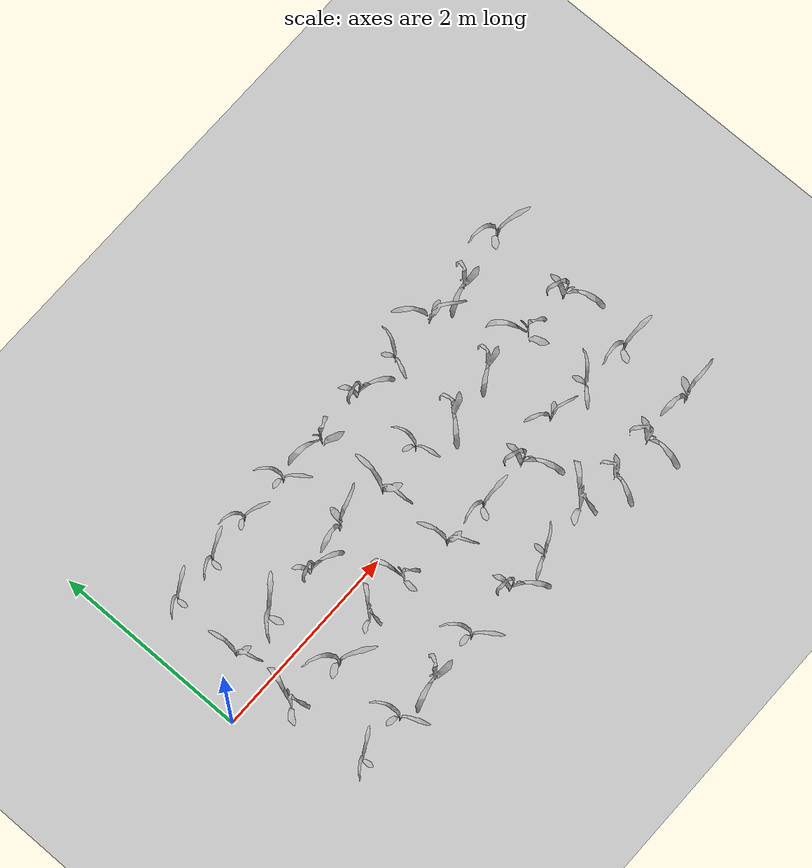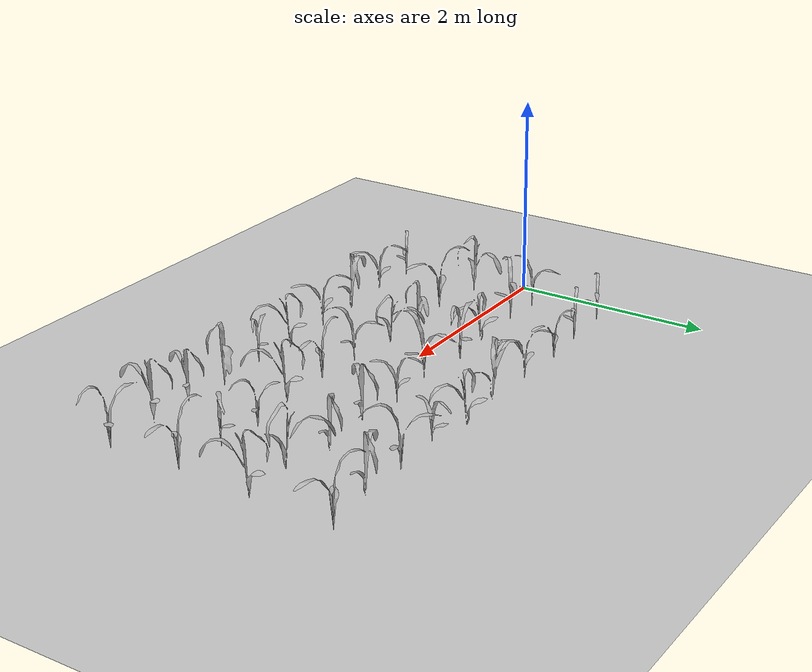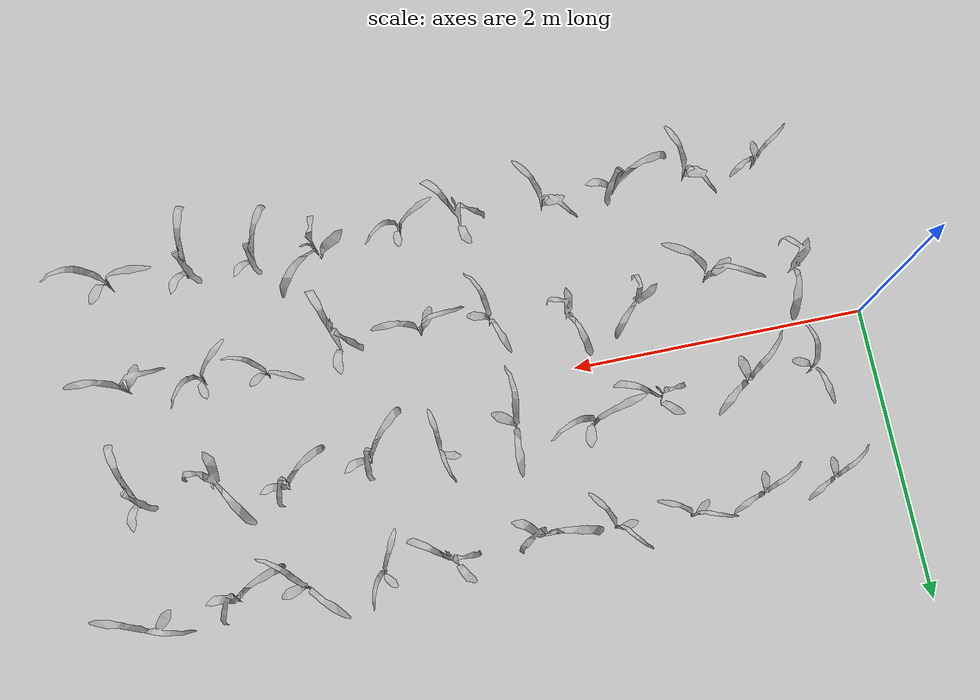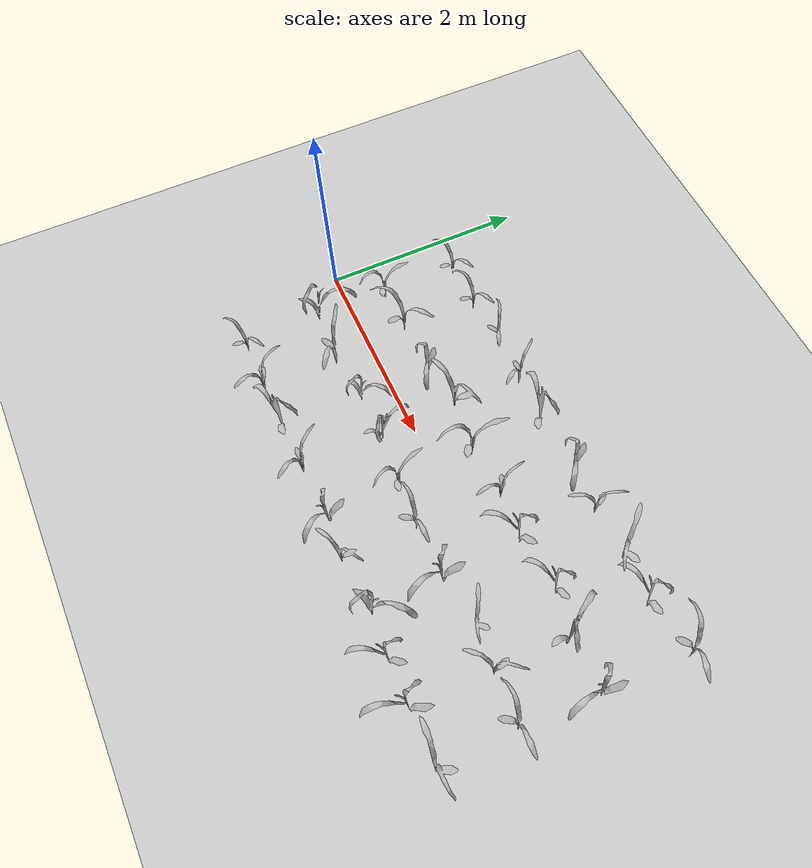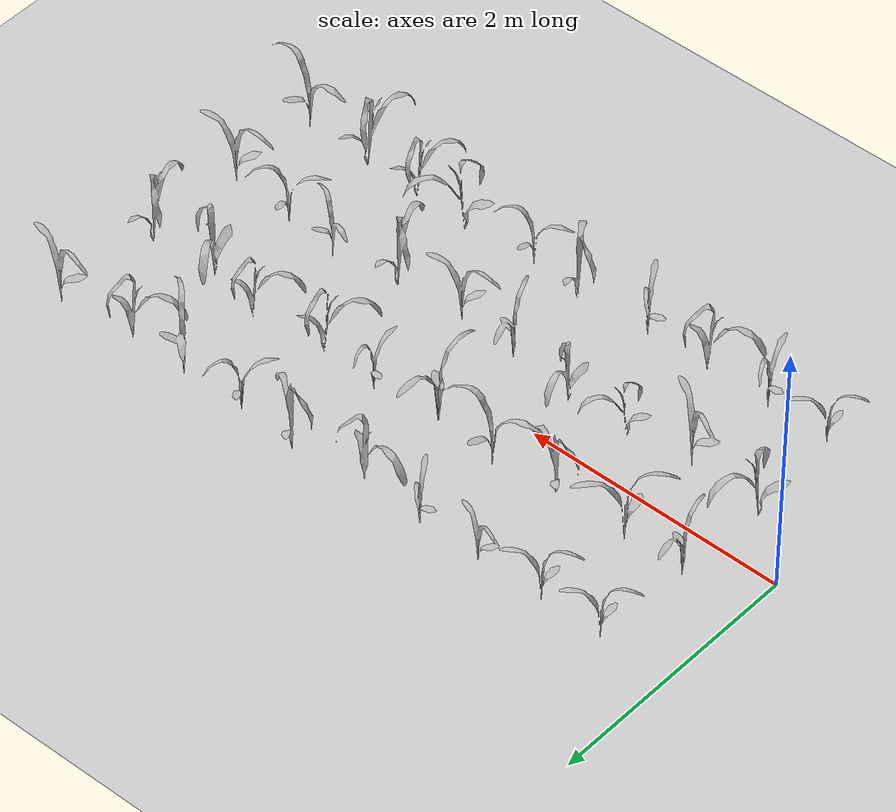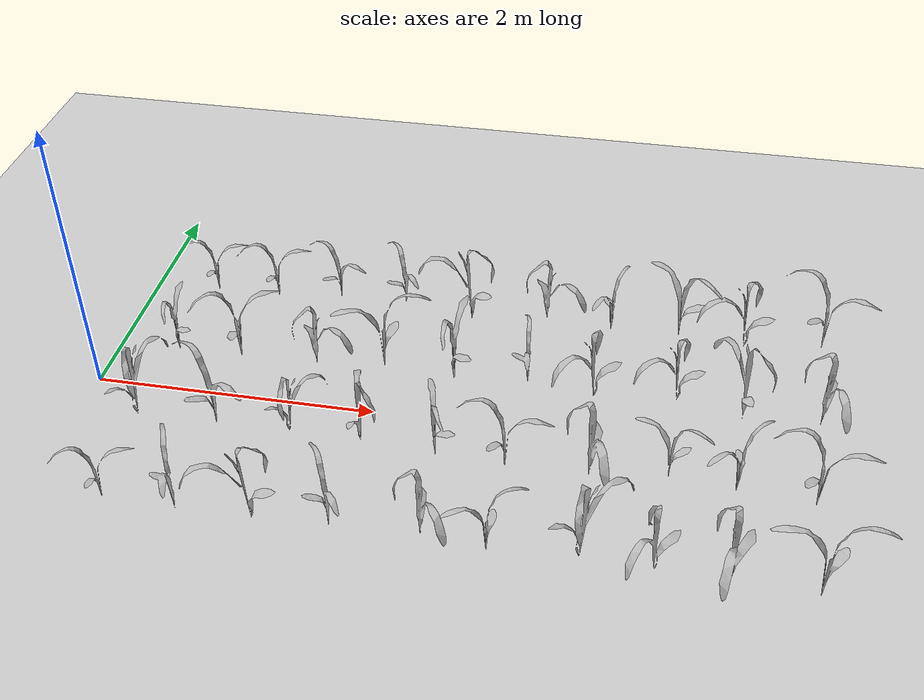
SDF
<sdf version="1.6">
 <world name="default">
  <model name="ground_plane">
   <static>1</static>
   <link name="link">
    <collision name="collision">
     <geometry><plane><normal>0 0 1</normal><size>100 100</size></plane></geometry>
     <surface>
      <contact><collide_bitmask>65535</collide_bitmask></contact>
      <friction><ode><mu>100</mu><mu2>50</mu2></ode></friction>
     </surface>
    </collision>
    <visual name="visual">
     <cast_shadows>0</cast_shadows>
     <geometry><plane><normal>0 0 1</normal><size>100 100</size></plane></geometry>
     <material>
      <script><uri>file://media/materials/scripts/gazebo.material</uri><name>Gazebo/Grey</name></script>
     </material>
    </visual>
   </link>
  </model>
  <model name="maize_02_0000">
   <pose>0.47049687635757786 0.36059624816049446 0.05 0 -0 3.884376960616973</pose>
   <link name="maize_02_0000_link">
    <inertial>
     <mass>5.0</mass>
     <inertia>
      <ixx>0.0033416667</ixx>
      <ixy>0</ixy>
      <ixz>0</ixz>
      <iyy>0.0033416667</iyy>
      <iyz>0</iyz>
      <izz>0.000016666667</izz>
     </inertia>
     <pose>0 0 0.1 0 0 0</pose>
    </inertial>
    <collision name="collision">
     <pose>0 0 0.2 0 -0 0</pose>
     <geometry><box><size>0.02 0.02 0.4</size></box></geometry>
     <surface><friction><ode><mu>10</mu><mu2>10</mu2></ode></friction></surface>
    </collision>
    <visual name="visual">
     <geometry>
      <mesh>
       <uri>model://maize_02/meshes/maize_02.dae</uri>
       <scale>0.5674274716346216 0.5674274716346216 0.5674274716346216</scale>
      </mesh>
     </geometry>
    </visual>
   </link>
  </model>
  <model name="maize_02_0001">
   <pose>0.508140931266495 1.104313894945125 0.05 0 -0 2.666948852061892</pose>
   <link name="maize_02_0001_link">
    <inertial>
     <mass>5.0</mass>
     <inertia>
      <ixx>0.0033416667</ixx>
      <ixy>0</ixy>
      <ixz>0</ixz>
      <iyy>0.0033416667</iyy>
      <iyz>0</iyz>
      <izz>0.000016666667</izz>
     </inertia>
     <pose>0 0 0.1 0 0 0</pose>
    </inertial>
    <collision name="collision">
     <pose>0 0 0.2 0 -0 0</pose>
     <geometry><box><size>0.02 0.02 0.4</size></box></geometry>
     <surface><friction><ode><mu>10</mu><mu2>10</mu2></ode></friction></surface>
    </collision>
    <visual name="visual">
     <geometry>
      <mesh>
       <uri>model://maize_02/meshes/maize_02.dae</uri>
       <scale>0.5115875292245987 0.5115875292245987 0.5115875292245987</scale>
      </mesh>
     </geometry>
    </visual>
   </link>
  </model>
  <model name="maize_01_0002">
   <pose>0.43486589940218173 -0.3454473768139016 0.05 0 -0 2.066160482995275</pose>
   <link name="maize_01_0002_link">
    <inertial>
     <mass>5.0</mass>
     <inertia>
      <ixx>0.0033416667</ixx>
      <ixy>0</ixy>
      <ixz>0</ixz>
      <iyy>0.0033416667</iyy>
      <iyz>0</iyz>
      <izz>0.000016666667</izz>
     </inertia>
     <pose>0 0 0.1 0 0 0</pose>
    </inertial>
    <collision name="collision">
     <pose>0 0 0.2 0 -0 0</pose>
     <geometry><box><size>0.02 0.02 0.4</size></box></geometry>
     <surface><friction><ode><mu>10</mu><mu2>10</mu2></ode></friction></surface>
    </collision>
    <visual name="visual">
     <geometry>
      <mesh>
       <uri>model://maize_01/meshes/maize_01.dae</uri>
       <scale>0.6489830155867166 0.6489830155867166 0.6489830155867166</scale>
      </mesh>
     </geometry>
    </visual>
   </link>
  </model>
  <model name="maize_02_0003">
   <pose>0.5099315625908049 -1.1301390917868228 0.05 0 -0 2.694714453417864</pose>
   <link name="maize_02_0003_link">
    <inertial>
     <mass>5.0</mass>
     <inertia>
      <ixx>0.0033416667</ixx>
      <ixy>0</ixy>
      <ixz>0</ixz>
      <iyy>0.0033416667</iyy>
      <iyz>0</iyz>
      <izz>0.000016666667</izz>
     </inertia>
     <pose>0 0 0.1 0 0 0</pose>
    </inertial>
    <collision name="collision">
     <pose>0 0 0.2 0 -0 0</pose>
     <geometry><box><size>0.02 0.02 0.4</size></box></geometry>
     <surface><friction><ode><mu>10</mu><mu2>10</mu2></ode></friction></surface>
    </collision>
    <visual name="visual">
     <geometry>
      <mesh>
       <uri>model://maize_02/meshes/maize_02.dae</uri>
       <scale>0.5016709728173756 0.5016709728173756 0.5016709728173756</scale>
      </mesh>
     </geometry>
    </visual>
   </link>
  </model>
  <model name="maize_02_0004">
   <pose>0.9311962609178649 0.3729072653908273 0.05 0 -0 2.855051085785902</pose>
   <link name="maize_02_0004_link">
    <inertial>
     <mass>5.0</mass>
     <inertia>
      <ixx>0.0033416667</ixx>
      <ixy>0</ixy>
      <ixz>0</ixz>
      <iyy>0.0033416667</iyy>
      <iyz>0</iyz>
      <izz>0.000016666667</izz>
     </inertia>
     <pose>0 0 0.1 0 0 0</pose>
    </inertial>
    <collision name="collision">
     <pose>0 0 0.2 0 -0 0</pose>
     <geometry><box><size>0.02 0.02 0.4</size></box></geometry>
     <surface><friction><ode><mu>10</mu><mu2>10</mu2></ode></friction></surface>
    </collision>
    <visual name="visual">
     <geometry>
      <mesh>
       <uri>model://maize_02/meshes/maize_02.dae</uri>
       <scale>0.662688299009895 0.662688299009895 0.662688299009895</scale>
      </mesh>
     </geometry>
    </visual>
   </link>
  </model>
  <model name="maize_02_0005">
   <pose>0.9833217093753088 1.109699803739185 0.05 0 -0 2.581048507436319</pose>
   <link name="maize_02_0005_link">
    <inertial>
     <mass>5.0</mass>
     <inertia>
      <ixx>0.0033416667</ixx>
      <ixy>0</ixy>
      <ixz>0</ixz>
      <iyy>0.0033416667</iyy>
      <iyz>0</iyz>
      <izz>0.000016666667</izz>
     </inertia>
     <pose>0 0 0.1 0 0 0</pose>
    </inertial>
    <collision name="collision">
     <pose>0 0 0.2 0 -0 0</pose>
     <geometry><box><size>0.02 0.02 0.4</size></box></geometry>
     <surface><friction><ode><mu>10</mu><mu2>10</mu2></ode></friction></surface>
    </collision>
    <visual name="visual">
     <geometry>
      <mesh>
       <uri>model://maize_02/meshes/maize_02.dae</uri>
       <scale>0.5312986790910379 0.5312986790910379 0.5312986790910379</scale>
      </mesh>
     </geometry>
    </visual>
   </link>
  </model>
  <model name="maize_02_0006">
   <pose>1.0187841868410517 -0.3981828536381571 0.05 0 -0 1.578195125479709</pose>
   <link name="maize_02_0006_link">
    <inertial>
     <mass>5.0</mass>
     <inertia>
      <ixx>0.0033416667</ixx>
      <ixy>0</ixy>
      <ixz>0</ixz>
      <iyy>0.0033416667</iyy>
      <iyz>0</iyz>
      <izz>0.000016666667</izz>
     </inertia>
     <pose>0 0 0.1 0 0 0</pose>
    </inertial>
    <collision name="collision">
     <pose>0 0 0.2 0 -0 0</pose>
     <geometry><box><size>0.02 0.02 0.4</size></box></geometry>
     <surface><friction><ode><mu>10</mu><mu2>10</mu2></ode></friction></surface>
    </collision>
    <visual name="visual">
     <geometry>
      <mesh>
       <uri>model://maize_02/meshes/maize_02.dae</uri>
       <scale>0.6868409701709819 0.6868409701709819 0.6868409701709819</scale>
      </mesh>
     </geometry>
    </visual>
   </link>
  </model>
  <model name="maize_02_0007">
   <pose>0.9982340490399799 -1.1398354682902523 0.05 0 -0 0.9474725027138337</pose>
   <link name="maize_02_0007_link">
    <inertial>
     <mass>5.0</mass>
     <inertia>
      <ixx>0.0033416667</ixx>
      <ixy>0</ixy>
      <ixz>0</ixz>
      <iyy>0.0033416667</iyy>
      <iyz>0</iyz>
      <izz>0.000016666667</izz>
     </inertia>
     <pose>0 0 0.1 0 0 0</pose>
    </inertial>
    <collision name="collision">
     <pose>0 0 0.2 0 -0 0</pose>
     <geometry><box><size>0.02 0.02 0.4</size></box></geometry>
     <surface><friction><ode><mu>10</mu><mu2>10</mu2></ode></friction></surface>
    </collision>
    <visual name="visual">
     <geometry>
      <mesh>
       <uri>model://maize_02/meshes/maize_02.dae</uri>
       <scale>0.5753369803053865 0.5753369803053865 0.5753369803053865</scale>
      </mesh>
     </geometry>
    </visual>
   </link>
  </model>
  <model name="maize_01_0008">
   <pose>1.4910292846520345 0.36998147962649564 0.05 0 -0 0.354033093321621</pose>
   <link name="maize_01_0008_link">
    <inertial>
     <mass>5.0</mass>
     <inertia>
      <ixx>0.0033416667</ixx>
      <ixy>0</ixy>
      <ixz>0</ixz>
      <iyy>0.0033416667</iyy>
      <iyz>0</iyz>
      <izz>0.000016666667</izz>
     </inertia>
     <pose>0 0 0.1 0 0 0</pose>
    </inertial>
    <collision name="collision">
     <pose>0 0 0.2 0 -0 0</pose>
     <geometry><box><size>0.02 0.02 0.4</size></box></geometry>
     <surface><friction><ode><mu>10</mu><mu2>10</mu2></ode></friction></surface>
    </collision>
    <visual name="visual">
     <geometry>
      <mesh>
       <uri>model://maize_01/meshes/maize_01.dae</uri>
       <scale>0.5600452258106574 0.5600452258106574 0.5600452258106574</scale>
      </mesh>
     </geometry>
    </visual>
   </link>
  </model>
  <model name="maize_02_0009">
   <pose>1.463804960982392 1.1517406796965655 0.05 0 -0 1.737335462703134</pose>
   <link name="maize_02_0009_link">
    <inertial>
     <mass>5.0</mass>
     <inertia>
      <ixx>0.0033416667</ixx>
      <ixy>0</ixy>
      <ixz>0</ixz>
      <iyy>0.0033416667</iyy>
      <iyz>0</iyz>
      <izz>0.000016666667</izz>
     </inertia>
     <pose>0 0 0.1 0 0 0</pose>
    </inertial>
    <collision name="collision">
     <pose>0 0 0.2 0 -0 0</pose>
     <geometry><box><size>0.02 0.02 0.4</size></box></geometry>
     <surface><friction><ode><mu>10</mu><mu2>10</mu2></ode></friction></surface>
    </collision>
    <visual name="visual">
     <geometry>
      <mesh>
       <uri>model://maize_02/meshes/maize_02.dae</uri>
       <scale>0.5069168064555951 0.5069168064555951 0.5069168064555951</scale>
      </mesh>
     </geometry>
    </visual>
   </link>
  </model>
  <model name="maize_01_0010">
   <pose>1.50807623899649 -0.33465844761086383 0.05 0 -0 1.6519221138219264</pose>
   <link name="maize_01_0010_link">
    <inertial>
     <mass>5.0</mass>
     <inertia>
      <ixx>0.0033416667</ixx>
      <ixy>0</ixy>
      <ixz>0</ixz>
      <iyy>0.0033416667</iyy>
      <iyz>0</iyz>
      <izz>0.000016666667</izz>
     </inertia>
     <pose>0 0 0.1 0 0 0</pose>
    </inertial>
    <collision name="collision">
     <pose>0 0 0.2 0 -0 0</pose>
     <geometry><box><size>0.02 0.02 0.4</size></box></geometry>
     <surface><friction><ode><mu>10</mu><mu2>10</mu2></ode></friction></surface>
    </collision>
    <visual name="visual">
     <geometry>
      <mesh>
       <uri>model://maize_01/meshes/maize_01.dae</uri>
       <scale>0.5238968436570051 0.5238968436570051 0.5238968436570051</scale>
      </mesh>
     </geometry>
    </visual>
   </link>
  </model>
  <model name="maize_01_0011">
   <pose>1.4978745621224943 -1.1325892652221476 0.05 0 -0 4.200214076907188</pose>
   <link name="maize_01_0011_link">
    <inertial>
     <mass>5.0</mass>
     <inertia>
      <ixx>0.0033416667</ixx>
      <ixy>0</ixy>
      <ixz>0</ixz>
      <iyy>0.0033416667</iyy>
      <iyz>0</iyz>
      <izz>0.000016666667</izz>
     </inertia>
     <pose>0 0 0.1 0 0 0</pose>
    </inertial>
    <collision name="collision">
     <pose>0 0 0.2 0 -0 0</pose>
     <geometry><box><size>0.02 0.02 0.4</size></box></geometry>
     <surface><friction><ode><mu>10</mu><mu2>10</mu2></ode></friction></surface>
    </collision>
    <visual name="visual">
     <geometry>
      <mesh>
       <uri>model://maize_01/meshes/maize_01.dae</uri>
       <scale>0.6493503078875315 0.6493503078875315 0.6493503078875315</scale>
      </mesh>
     </geometry>
    </visual>
   </link>
  </model>
  <model name="maize_02_0012">
   <pose>1.972013142105016 0.4362986354244308 0.05 0 -0 5.554065683698922</pose>
   <link name="maize_02_0012_link">
    <inertial>
     <mass>5.0</mass>
     <inertia>
      <ixx>0.0033416667</ixx>
      <ixy>0</ixy>
      <ixz>0</ixz>
      <iyy>0.0033416667</iyy>
      <iyz>0</iyz>
      <izz>0.000016666667</izz>
     </inertia>
     <pose>0 0 0.1 0 0 0</pose>
    </inertial>
    <collision name="collision">
     <pose>0 0 0.2 0 -0 0</pose>
     <geometry><box><size>0.02 0.02 0.4</size></box></geometry>
     <surface><friction><ode><mu>10</mu><mu2>10</mu2></ode></friction></surface>
    </collision>
    <visual name="visual">
     <geometry>
      <mesh>
       <uri>model://maize_02/meshes/maize_02.dae</uri>
       <scale>0.6814321854556409 0.6814321854556409 0.6814321854556409</scale>
      </mesh>
     </geometry>
    </visual>
   </link>
  </model>
  <model name="maize_02_0013">
   <pose>1.9722264010497819 1.1272146396033693 0.05 0 -0 1.2048861847161072</pose>
   <link name="maize_02_0013_link">
    <inertial>
     <mass>5.0</mass>
     <inertia>
      <ixx>0.0033416667</ixx>
      <ixy>0</ixy>
      <ixz>0</ixz>
      <iyy>0.0033416667</iyy>
      <iyz>0</iyz>
      <izz>0.000016666667</izz>
     </inertia>
     <pose>0 0 0.1 0 0 0</pose>
    </inertial>
    <collision name="collision">
     <pose>0 0 0.2 0 -0 0</pose>
     <geometry><box><size>0.02 0.02 0.4</size></box></geometry>
     <surface><friction><ode><mu>10</mu><mu2>10</mu2></ode></friction></surface>
    </collision>
    <visual name="visual">
     <geometry>
      <mesh>
       <uri>model://maize_02/meshes/maize_02.dae</uri>
       <scale>0.5304891759352847 0.5304891759352847 0.5304891759352847</scale>
      </mesh>
     </geometry>
    </visual>
   </link>
  </model>
  <model name="maize_01_0014">
   <pose>1.9960204431345903 -0.3313790354089761 0.05 0 -0 2.630277585510729</pose>
   <link name="maize_01_0014_link">
    <inertial>
     <mass>5.0</mass>
     <inertia>
      <ixx>0.0033416667</ixx>
      <ixy>0</ixy>
      <ixz>0</ixz>
      <iyy>0.0033416667</iyy>
      <iyz>0</iyz>
      <izz>0.000016666667</izz>
     </inertia>
     <pose>0 0 0.1 0 0 0</pose>
    </inertial>
    <collision name="collision">
     <pose>0 0 0.2 0 -0 0</pose>
     <geometry><box><size>0.02 0.02 0.4</size></box></geometry>
     <surface><friction><ode><mu>10</mu><mu2>10</mu2></ode></friction></surface>
    </collision>
    <visual name="visual">
     <geometry>
      <mesh>
       <uri>model://maize_01/meshes/maize_01.dae</uri>
       <scale>0.5538803203068241 0.5538803203068241 0.5538803203068241</scale>
      </mesh>
     </geometry>
    </visual>
   </link>
  </model>
  <model name="maize_02_0015">
   <pose>1.9959096789572015 -1.129340379910915 0.05 0 -0 1.172286415792516</pose>
   <link name="maize_02_0015_link">
    <inertial>
     <mass>5.0</mass>
     <inertia>
      <ixx>0.0033416667</ixx>
      <ixy>0</ixy>
      <ixz>0</ixz>
      <iyy>0.0033416667</iyy>
      <iyz>0</iyz>
      <izz>0.000016666667</izz>
     </inertia>
     <pose>0 0 0.1 0 0 0</pose>
    </inertial>
    <collision name="collision">
     <pose>0 0 0.2 0 -0 0</pose>
     <geometry><box><size>0.02 0.02 0.4</size></box></geometry>
     <surface><friction><ode><mu>10</mu><mu2>10</mu2></ode></friction></surface>
    </collision>
    <visual name="visual">
     <geometry>
      <mesh>
       <uri>model://maize_02/meshes/maize_02.dae</uri>
       <scale>0.5845602602874503 0.5845602602874503 0.5845602602874503</scale>
      </mesh>
     </geometry>
    </visual>
   </link>
  </model>
  <model name="maize_02_0016">
   <pose>2.4899421607883987 0.36773069705212297 0.05 0 -0 3.6724743535783757</pose>
   <link name="maize_02_0016_link">
    <inertial>
     <mass>5.0</mass>
     <inertia>
      <ixx>0.0033416667</ixx>
      <ixy>0</ixy>
      <ixz>0</ixz>
      <iyy>0.0033416667</iyy>
      <iyz>0</iyz>
      <izz>0.000016666667</izz>
     </inertia>
     <pose>0 0 0.1 0 0 0</pose>
    </inertial>
    <collision name="collision">
     <pose>0 0 0.2 0 -0 0</pose>
     <geometry><box><size>0.02 0.02 0.4</size></box></geometry>
     <surface><friction><ode><mu>10</mu><mu2>10</mu2></ode></friction></surface>
    </collision>
    <visual name="visual">
     <geometry>
      <mesh>
       <uri>model://maize_02/meshes/maize_02.dae</uri>
       <scale>0.6978009730400911 0.6978009730400911 0.6978009730400911</scale>
      </mesh>
     </geometry>
    </visual>
   </link>
  </model>
  <model name="maize_01_0017">
   <pose>2.4798370892079538 1.0891925927552135 0.05 0 -0 3.772195409406952</pose>
   <link name="maize_01_0017_link">
    <inertial>
     <mass>5.0</mass>
     <inertia>
      <ixx>0.0033416667</ixx>
      <ixy>0</ixy>
      <ixz>0</ixz>
      <iyy>0.0033416667</iyy>
      <iyz>0</iyz>
      <izz>0.000016666667</izz>
     </inertia>
     <pose>0 0 0.1 0 0 0</pose>
    </inertial>
    <collision name="collision">
     <pose>0 0 0.2 0 -0 0</pose>
     <geometry><box><size>0.02 0.02 0.4</size></box></geometry>
     <surface><friction><ode><mu>10</mu><mu2>10</mu2></ode></friction></surface>
    </collision>
    <visual name="visual">
     <geometry>
      <mesh>
       <uri>model://maize_01/meshes/maize_01.dae</uri>
       <scale>0.6694863712459956 0.6694863712459956 0.6694863712459956</scale>
      </mesh>
     </geometry>
    </visual>
   </link>
  </model>
  <model name="maize_02_0018">
   <pose>2.5130626953292317 -0.3907262505887491 0.05 0 -0 4.057416928748751</pose>
   <link name="maize_02_0018_link">
    <inertial>
     <mass>5.0</mass>
     <inertia>
      <ixx>0.0033416667</ixx>
      <ixy>0</ixy>
      <ixz>0</ixz>
      <iyy>0.0033416667</iyy>
      <iyz>0</iyz>
      <izz>0.000016666667</izz>
     </inertia>
     <pose>0 0 0.1 0 0 0</pose>
    </inertial>
    <collision name="collision">
     <pose>0 0 0.2 0 -0 0</pose>
     <geometry><box><size>0.02 0.02 0.4</size></box></geometry>
     <surface><friction><ode><mu>10</mu><mu2>10</mu2></ode></friction></surface>
    </collision>
    <visual name="visual">
     <geometry>
      <mesh>
       <uri>model://maize_02/meshes/maize_02.dae</uri>
       <scale>0.5874464423976106 0.5874464423976106 0.5874464423976106</scale>
      </mesh>
     </geometry>
    </visual>
   </link>
  </model>
  <model name="maize_01_0019">
   <pose>2.565462817772224 -1.0988761495902357 0.05 0 -0 6.128877144391759</pose>
   <link name="maize_01_0019_link">
    <inertial>
     <mass>5.0</mass>
     <inertia>
      <ixx>0.0033416667</ixx>
      <ixy>0</ixy>
      <ixz>0</ixz>
      <iyy>0.0033416667</iyy>
      <iyz>0</iyz>
      <izz>0.000016666667</izz>
     </inertia>
     <pose>0 0 0.1 0 0 0</pose>
    </inertial>
    <collision name="collision">
     <pose>0 0 0.2 0 -0 0</pose>
     <geometry><box><size>0.02 0.02 0.4</size></box></geometry>
     <surface><friction><ode><mu>10</mu><mu2>10</mu2></ode></friction></surface>
    </collision>
    <visual name="visual">
     <geometry>
      <mesh>
       <uri>model://maize_01/meshes/maize_01.dae</uri>
       <scale>0.6065098796899253 0.6065098796899253 0.6065098796899253</scale>
      </mesh>
     </geometry>
    </visual>
   </link>
  </model>
  <model name="maize_02_0020">
   <pose>3.0013577122880113 0.41387817632451973 0.05 0 -0 0.7418947153538963</pose>
   <link name="maize_02_0020_link">
    <inertial>
     <mass>5.0</mass>
     <inertia>
      <ixx>0.0033416667</ixx>
      <ixy>0</ixy>
      <ixz>0</ixz>
      <iyy>0.0033416667</iyy>
      <iyz>0</iyz>
      <izz>0.000016666667</izz>
     </inertia>
     <pose>0 0 0.1 0 0 0</pose>
    </inertial>
    <collision name="collision">
     <pose>0 0 0.2 0 -0 0</pose>
     <geometry><box><size>0.02 0.02 0.4</size></box></geometry>
     <surface><friction><ode><mu>10</mu><mu2>10</mu2></ode></friction></surface>
    </collision>
    <visual name="visual">
     <geometry>
      <mesh>
       <uri>model://maize_02/meshes/maize_02.dae</uri>
       <scale>0.514632109587351 0.514632109587351 0.514632109587351</scale>
      </mesh>
     </geometry>
    </visual>
   </link>
  </model>
  <model name="maize_01_0021">
   <pose>3.032986096075952 1.156134638640285 0.05 0 -0 0.1977341317002129</pose>
   <link name="maize_01_0021_link">
    <inertial>
     <mass>5.0</mass>
     <inertia>
      <ixx>0.0033416667</ixx>
      <ixy>0</ixy>
      <ixz>0</ixz>
      <iyy>0.0033416667</iyy>
      <iyz>0</iyz>
      <izz>0.000016666667</izz>
     </inertia>
     <pose>0 0 0.1 0 0 0</pose>
    </inertial>
    <collision name="collision">
     <pose>0 0 0.2 0 -0 0</pose>
     <geometry><box><size>0.02 0.02 0.4</size></box></geometry>
     <surface><friction><ode><mu>10</mu><mu2>10</mu2></ode></friction></surface>
    </collision>
    <visual name="visual">
     <geometry>
      <mesh>
       <uri>model://maize_01/meshes/maize_01.dae</uri>
       <scale>0.5876208934212445 0.5876208934212445 0.5876208934212445</scale>
      </mesh>
     </geometry>
    </visual>
   </link>
  </model>
  <model name="maize_02_0022">
   <pose>2.9804407283532983 -0.42109649388774395 0.05 0 -0 2.155444909990796</pose>
   <link name="maize_02_0022_link">
    <inertial>
     <mass>5.0</mass>
     <inertia>
      <ixx>0.0033416667</ixx>
      <ixy>0</ixy>
      <ixz>0</ixz>
      <iyy>0.0033416667</iyy>
      <iyz>0</iyz>
      <izz>0.000016666667</izz>
     </inertia>
     <pose>0 0 0.1 0 0 0</pose>
    </inertial>
    <collision name="collision">
     <pose>0 0 0.2 0 -0 0</pose>
     <geometry><box><size>0.02 0.02 0.4</size></box></geometry>
     <surface><friction><ode><mu>10</mu><mu2>10</mu2></ode></friction></surface>
    </collision>
    <visual name="visual">
     <geometry>
      <mesh>
       <uri>model://maize_02/meshes/maize_02.dae</uri>
       <scale>0.6079977954316437 0.6079977954316437 0.6079977954316437</scale>
      </mesh>
     </geometry>
    </visual>
   </link>
  </model>
  <model name="maize_02_0023">
   <pose>2.9859502665502844 -1.145055179218194 0.05 0 -0 5.758024759081069</pose>
   <link name="maize_02_0023_link">
    <inertial>
     <mass>5.0</mass>
     <inertia>
      <ixx>0.0033416667</ixx>
      <ixy>0</ixy>
      <ixz>0</ixz>
      <iyy>0.0033416667</iyy>
      <iyz>0</iyz>
      <izz>0.000016666667</izz>
     </inertia>
     <pose>0 0 0.1 0 0 0</pose>
    </inertial>
    <collision name="collision">
     <pose>0 0 0.2 0 -0 0</pose>
     <geometry><box><size>0.02 0.02 0.4</size></box></geometry>
     <surface><friction><ode><mu>10</mu><mu2>10</mu2></ode></friction></surface>
    </collision>
    <visual name="visual">
     <geometry>
      <mesh>
       <uri>model://maize_02/meshes/maize_02.dae</uri>
       <scale>0.533953348824247 0.533953348824247 0.533953348824247</scale>
      </mesh>
     </geometry>
    </visual>
   </link>
  </model>
  <model name="maize_01_0024">
   <pose>3.4705427651438834 0.37124192825648084 0.05 0 -0 4.737169701775158</pose>
   <link name="maize_01_0024_link">
    <inertial>
     <mass>5.0</mass>
     <inertia>
      <ixx>0.0033416667</ixx>
      <ixy>0</ixy>
      <ixz>0</ixz>
      <iyy>0.0033416667</iyy>
      <iyz>0</iyz>
      <izz>0.000016666667</izz>
     </inertia>
     <pose>0 0 0.1 0 0 0</pose>
    </inertial>
    <collision name="collision">
     <pose>0 0 0.2 0 -0 0</pose>
     <geometry><box><size>0.02 0.02 0.4</size></box></geometry>
     <surface><friction><ode><mu>10</mu><mu2>10</mu2></ode></friction></surface>
    </collision>
    <visual name="visual">
     <geometry>
      <mesh>
       <uri>model://maize_01/meshes/maize_01.dae</uri>
       <scale>0.6189004155222745 0.6189004155222745 0.6189004155222745</scale>
      </mesh>
     </geometry>
    </visual>
   </link>
  </model>
  <model name="maize_02_0025">
   <pose>3.51355015213579 1.1123997917842876 0.05 0 -0 0.14389386696007964</pose>
   <link name="maize_02_0025_link">
    <inertial>
     <mass>5.0</mass>
     <inertia>
      <ixx>0.0033416667</ixx>
      <ixy>0</ixy>
      <ixz>0</ixz>
      <iyy>0.0033416667</iyy>
      <iyz>0</iyz>
      <izz>0.000016666667</izz>
     </inertia>
     <pose>0 0 0.1 0 0 0</pose>
    </inertial>
    <collision name="collision">
     <pose>0 0 0.2 0 -0 0</pose>
     <geometry><box><size>0.02 0.02 0.4</size></box></geometry>
     <surface><friction><ode><mu>10</mu><mu2>10</mu2></ode></friction></surface>
    </collision>
    <visual name="visual">
     <geometry>
      <mesh>
       <uri>model://maize_02/meshes/maize_02.dae</uri>
       <scale>0.5227514900756978 0.5227514900756978 0.5227514900756978</scale>
      </mesh>
     </geometry>
    </visual>
   </link>
  </model>
  <model name="maize_01_0026">
   <pose>3.5254951566729456 -0.40938334789493747 0.05 0 -0 5.832737683356969</pose>
   <link name="maize_01_0026_link">
    <inertial>
     <mass>5.0</mass>
     <inertia>
      <ixx>0.0033416667</ixx>
      <ixy>0</ixy>
      <ixz>0</ixz>
      <iyy>0.0033416667</iyy>
      <iyz>0</iyz>
      <izz>0.000016666667</izz>
     </inertia>
     <pose>0 0 0.1 0 0 0</pose>
    </inertial>
    <collision name="collision">
     <pose>0 0 0.2 0 -0 0</pose>
     <geometry><box><size>0.02 0.02 0.4</size></box></geometry>
     <surface><friction><ode><mu>10</mu><mu2>10</mu2></ode></friction></surface>
    </collision>
    <visual name="visual">
     <geometry>
      <mesh>
       <uri>model://maize_01/meshes/maize_01.dae</uri>
       <scale>0.679571244358817 0.679571244358817 0.679571244358817</scale>
      </mesh>
     </geometry>
    </visual>
   </link>
  </model>
  <model name="maize_01_0027">
   <pose>3.551398597729426 -1.098131697571287 0.05 0 -0 1.613967359752651</pose>
   <link name="maize_01_0027_link">
    <inertial>
     <mass>5.0</mass>
     <inertia>
      <ixx>0.0033416667</ixx>
      <ixy>0</ixy>
      <ixz>0</ixz>
      <iyy>0.0033416667</iyy>
      <iyz>0</iyz>
      <izz>0.000016666667</izz>
     </inertia>
     <pose>0 0 0.1 0 0 0</pose>
    </inertial>
    <collision name="collision">
     <pose>0 0 0.2 0 -0 0</pose>
     <geometry><box><size>0.02 0.02 0.4</size></box></geometry>
     <surface><friction><ode><mu>10</mu><mu2>10</mu2></ode></friction></surface>
    </collision>
    <visual name="visual">
     <geometry>
      <mesh>
       <uri>model://maize_01/meshes/maize_01.dae</uri>
       <scale>0.6787900228724834 0.6787900228724834 0.6787900228724834</scale>
      </mesh>
     </geometry>
    </visual>
   </link>
  </model>
  <model name="maize_01_0028">
   <pose>4.038935901359413 0.43676302517460464 0.05 0 -0 4.505408310408163</pose>
   <link name="maize_01_0028_link">
    <inertial>
     <mass>5.0</mass>
     <inertia>
      <ixx>0.0033416667</ixx>
      <ixy>0</ixy>
      <ixz>0</ixz>
      <iyy>0.0033416667</iyy>
      <iyz>0</iyz>
      <izz>0.000016666667</izz>
     </inertia>
     <pose>0 0 0.1 0 0 0</pose>
    </inertial>
    <collision name="collision">
     <pose>0 0 0.2 0 -0 0</pose>
     <geometry><box><size>0.02 0.02 0.4</size></box></geometry>
     <surface><friction><ode><mu>10</mu><mu2>10</mu2></ode></friction></surface>
    </collision>
    <visual name="visual">
     <geometry>
      <mesh>
       <uri>model://maize_01/meshes/maize_01.dae</uri>
       <scale>0.5771859699419091 0.5771859699419091 0.5771859699419091</scale>
      </mesh>
     </geometry>
    </visual>
   </link>
  </model>
  <model name="maize_02_0029">
   <pose>4.009812641180788 1.1255841615126954 0.05 0 -0 4.533838017147104</pose>
   <link name="maize_02_0029_link">
    <inertial>
     <mass>5.0</mass>
     <inertia>
      <ixx>0.0033416667</ixx>
      <ixy>0</ixy>
      <ixz>0</ixz>
      <iyy>0.0033416667</iyy>
      <iyz>0</iyz>
      <izz>0.000016666667</izz>
     </inertia>
     <pose>0 0 0.1 0 0 0</pose>
    </inertial>
    <collision name="collision">
     <pose>0 0 0.2 0 -0 0</pose>
     <geometry><box><size>0.02 0.02 0.4</size></box></geometry>
     <surface><friction><ode><mu>10</mu><mu2>10</mu2></ode></friction></surface>
    </collision>
    <visual name="visual">
     <geometry>
      <mesh>
       <uri>model://maize_02/meshes/maize_02.dae</uri>
       <scale>0.6824782738088802 0.6824782738088802 0.6824782738088802</scale>
      </mesh>
     </geometry>
    </visual>
   </link>
  </model>
  <model name="maize_02_0030">
   <pose>4.0348752667196 -0.3311524043415686 0.05 0 -0 4.857825403753622</pose>
   <link name="maize_02_0030_link">
    <inertial>
     <mass>5.0</mass>
     <inertia>
      <ixx>0.0033416667</ixx>
      <ixy>0</ixy>
      <ixz>0</ixz>
      <iyy>0.0033416667</iyy>
      <iyz>0</iyz>
      <izz>0.000016666667</izz>
     </inertia>
     <pose>0 0 0.1 0 0 0</pose>
    </inertial>
    <collision name="collision">
     <pose>0 0 0.2 0 -0 0</pose>
     <geometry><box><size>0.02 0.02 0.4</size></box></geometry>
     <surface><friction><ode><mu>10</mu><mu2>10</mu2></ode></friction></surface>
    </collision>
    <visual name="visual">
     <geometry>
      <mesh>
       <uri>model://maize_02/meshes/maize_02.dae</uri>
       <scale>0.5345925895765861 0.5345925895765861 0.5345925895765861</scale>
      </mesh>
     </geometry>
    </visual>
   </link>
  </model>
  <model name="maize_01_0031">
   <pose>3.9986258673558384 -1.131019786122446 0.05 0 -0 5.0650412360898756</pose>
   <link name="maize_01_0031_link">
    <inertial>
     <mass>5.0</mass>
     <inertia>
      <ixx>0.0033416667</ixx>
      <ixy>0</ixy>
      <ixz>0</ixz>
      <iyy>0.0033416667</iyy>
      <iyz>0</iyz>
      <izz>0.000016666667</izz>
     </inertia>
     <pose>0 0 0.1 0 0 0</pose>
    </inertial>
    <collision name="collision">
     <pose>0 0 0.2 0 -0 0</pose>
     <geometry><box><size>0.02 0.02 0.4</size></box></geometry>
     <surface><friction><ode><mu>10</mu><mu2>10</mu2></ode></friction></surface>
    </collision>
    <visual name="visual">
     <geometry>
      <mesh>
       <uri>model://maize_01/meshes/maize_01.dae</uri>
       <scale>0.586369662920548 0.586369662920548 0.586369662920548</scale>
      </mesh>
     </geometry>
    </visual>
   </link>
  </model>
  <model name="maize_01_0032">
   <pose>4.494411528204541 0.3188684412651709 0.05 0 -0 2.945612463472695</pose>
   <link name="maize_01_0032_link">
    <inertial>
     <mass>5.0</mass>
     <inertia>
      <ixx>0.0033416667</ixx>
      <ixy>0</ixy>
      <ixz>0</ixz>
      <iyy>0.0033416667</iyy>
      <iyz>0</iyz>
      <izz>0.000016666667</izz>
     </inertia>
     <pose>0 0 0.1 0 0 0</pose>
    </inertial>
    <collision name="collision">
     <pose>0 0 0.2 0 -0 0</pose>
     <geometry><box><size>0.02 0.02 0.4</size></box></geometry>
     <surface><friction><ode><mu>10</mu><mu2>10</mu2></ode></friction></surface>
    </collision>
    <visual name="visual">
     <geometry>
      <mesh>
       <uri>model://maize_01/meshes/maize_01.dae</uri>
       <scale>0.6729138496896988 0.6729138496896988 0.6729138496896988</scale>
      </mesh>
     </geometry>
    </visual>
   </link>
  </model>
  <model name="maize_01_0033">
   <pose>4.481704221677015 1.1048405260704386 0.05 0 -0 4.318497426130881</pose>
   <link name="maize_01_0033_link">
    <inertial>
     <mass>5.0</mass>
     <inertia>
      <ixx>0.0033416667</ixx>
      <ixy>0</ixy>
      <ixz>0</ixz>
      <iyy>0.0033416667</iyy>
      <iyz>0</iyz>
      <izz>0.000016666667</izz>
     </inertia>
     <pose>0 0 0.1 0 0 0</pose>
    </inertial>
    <collision name="collision">
     <pose>0 0 0.2 0 -0 0</pose>
     <geometry><box><size>0.02 0.02 0.4</size></box></geometry>
     <surface><friction><ode><mu>10</mu><mu2>10</mu2></ode></friction></surface>
    </collision>
    <visual name="visual">
     <geometry>
      <mesh>
       <uri>model://maize_01/meshes/maize_01.dae</uri>
       <scale>0.6289584406914008 0.6289584406914008 0.6289584406914008</scale>
      </mesh>
     </geometry>
    </visual>
   </link>
  </model>
  <model name="maize_02_0034">
   <pose>4.468238910624119 -0.3792912988688344 0.05 0 -0 6.073926664607151</pose>
   <link name="maize_02_0034_link">
    <inertial>
     <mass>5.0</mass>
     <inertia>
      <ixx>0.0033416667</ixx>
      <ixy>0</ixy>
      <ixz>0</ixz>
      <iyy>0.0033416667</iyy>
      <iyz>0</iyz>
      <izz>0.000016666667</izz>
     </inertia>
     <pose>0 0 0.1 0 0 0</pose>
    </inertial>
    <collision name="collision">
     <pose>0 0 0.2 0 -0 0</pose>
     <geometry><box><size>0.02 0.02 0.4</size></box></geometry>
     <surface><friction><ode><mu>10</mu><mu2>10</mu2></ode></friction></surface>
    </collision>
    <visual name="visual">
     <geometry>
      <mesh>
       <uri>model://maize_02/meshes/maize_02.dae</uri>
       <scale>0.5528094305392898 0.5528094305392898 0.5528094305392898</scale>
      </mesh>
     </geometry>
    </visual>
   </link>
  </model>
  <model name="maize_01_0035">
   <pose>4.446875384365773 -1.1407014834971003 0.05 0 -0 5.351995299100307</pose>
   <link name="maize_01_0035_link">
    <inertial>
     <mass>5.0</mass>
     <inertia>
      <ixx>0.0033416667</ixx>
      <ixy>0</ixy>
      <ixz>0</ixz>
      <iyy>0.0033416667</iyy>
      <iyz>0</iyz>
      <izz>0.000016666667</izz>
     </inertia>
     <pose>0 0 0.1 0 0 0</pose>
    </inertial>
    <collision name="collision">
     <pose>0 0 0.2 0 -0 0</pose>
     <geometry><box><size>0.02 0.02 0.4</size></box></geometry>
     <surface><friction><ode><mu>10</mu><mu2>10</mu2></ode></friction></surface>
    </collision>
    <visual name="visual">
     <geometry>
      <mesh>
       <uri>model://maize_01/meshes/maize_01.dae</uri>
       <scale>0.675906921977078 0.675906921977078 0.675906921977078</scale>
      </mesh>
     </geometry>
    </visual>
   </link>
  </model>
  <model name="maize_01_0036">
   <pose>5.013109399768455 0.3470658769002186 0.05 0 -0 5.754867637289687</pose>
   <link name="maize_01_0036_link">
    <inertial>
     <mass>5.0</mass>
     <inertia>
      <ixx>0.0033416667</ixx>
      <ixy>0</ixy>
      <ixz>0</ixz>
      <iyy>0.0033416667</iyy>
      <iyz>0</iyz>
      <izz>0.000016666667</izz>
     </inertia>
     <pose>0 0 0.1 0 0 0</pose>
    </inertial>
    <collision name="collision">
     <pose>0 0 0.2 0 -0 0</pose>
     <geometry><box><size>0.02 0.02 0.4</size></box></geometry>
     <surface><friction><ode><mu>10</mu><mu2>10</mu2></ode></friction></surface>
    </collision>
    <visual name="visual">
     <geometry>
      <mesh>
       <uri>model://maize_01/meshes/maize_01.dae</uri>
       <scale>0.6676630052171705 0.6676630052171705 0.6676630052171705</scale>
      </mesh>
     </geometry>
    </visual>
   </link>
  </model>
  <model name="maize_02_0037">
   <pose>5.04050455921257 1.1898631053769173 0.05 0 -0 1.8605534795568581</pose>
   <link name="maize_02_0037_link">
    <inertial>
     <mass>5.0</mass>
     <inertia>
      <ixx>0.0033416667</ixx>
      <ixy>0</ixy>
      <ixz>0</ixz>
      <iyy>0.0033416667</iyy>
      <iyz>0</iyz>
      <izz>0.000016666667</izz>
     </inertia>
     <pose>0 0 0.1 0 0 0</pose>
    </inertial>
    <collision name="collision">
     <pose>0 0 0.2 0 -0 0</pose>
     <geometry><box><size>0.02 0.02 0.4</size></box></geometry>
     <surface><friction><ode><mu>10</mu><mu2>10</mu2></ode></friction></surface>
    </collision>
    <visual name="visual">
     <geometry>
      <mesh>
       <uri>model://maize_02/meshes/maize_02.dae</uri>
       <scale>0.6757560835256996 0.6757560835256996 0.6757560835256996</scale>
      </mesh>
     </geometry>
    </visual>
   </link>
  </model>
  <model name="maize_02_0038">
   <pose>4.972205739177155 -0.41432018499572293 0.05 0 -0 2.10815389910329</pose>
   <link name="maize_02_0038_link">
    <inertial>
     <mass>5.0</mass>
     <inertia>
      <ixx>0.0033416667</ixx>
      <ixy>0</ixy>
      <ixz>0</ixz>
      <iyy>0.0033416667</iyy>
      <iyz>0</iyz>
      <izz>0.000016666667</izz>
     </inertia>
     <pose>0 0 0.1 0 0 0</pose>
    </inertial>
    <collision name="collision">
     <pose>0 0 0.2 0 -0 0</pose>
     <geometry><box><size>0.02 0.02 0.4</size></box></geometry>
     <surface><friction><ode><mu>10</mu><mu2>10</mu2></ode></friction></surface>
    </collision>
    <visual name="visual">
     <geometry>
      <mesh>
       <uri>model://maize_02/meshes/maize_02.dae</uri>
       <scale>0.6611868578351846 0.6611868578351846 0.6611868578351846</scale>
      </mesh>
     </geometry>
    </visual>
   </link>
  </model>
  <model name="maize_02_0039">
   <pose>4.9833682163221 -1.1506723377802597 0.05 0 -0 5.247131645449195</pose>
   <link name="maize_02_0039_link">
    <inertial>
     <mass>5.0</mass>
     <inertia>
      <ixx>0.0033416667</ixx>
      <ixy>0</ixy>
      <ixz>0</ixz>
      <iyy>0.0033416667</iyy>
      <iyz>0</iyz>
      <izz>0.000016666667</izz>
     </inertia>
     <pose>0 0 0.1 0 0 0</pose>
    </inertial>
    <collision name="collision">
     <pose>0 0 0.2 0 -0 0</pose>
     <geometry><box><size>0.02 0.02 0.4</size></box></geometry>
     <surface><friction><ode><mu>10</mu><mu2>10</mu2></ode></friction></surface>
    </collision>
    <visual name="visual">
     <geometry>
      <mesh>
       <uri>model://maize_02/meshes/maize_02.dae</uri>
       <scale>0.6895169509827215 0.6895169509827215 0.6895169509827215</scale>
      </mesh>
     </geometry>
    </visual>
   </link>
  </model>
 </world>
</sdf>
